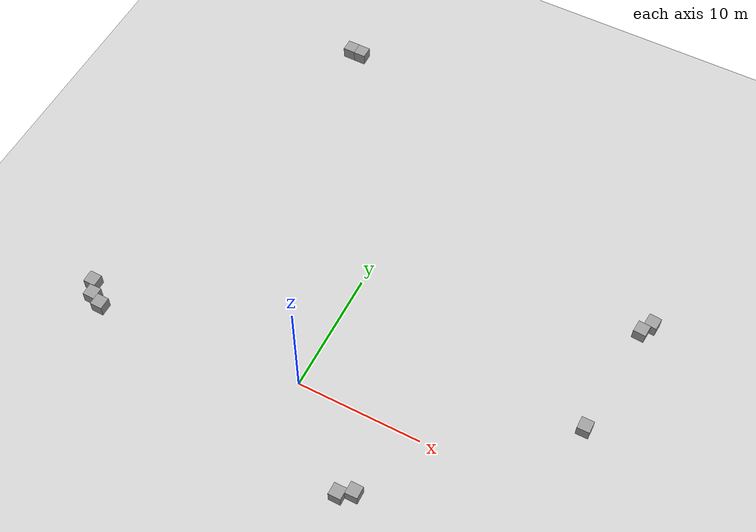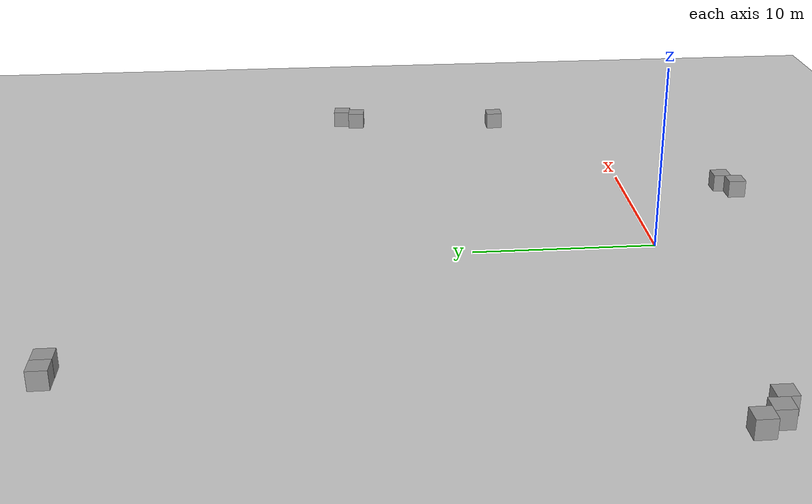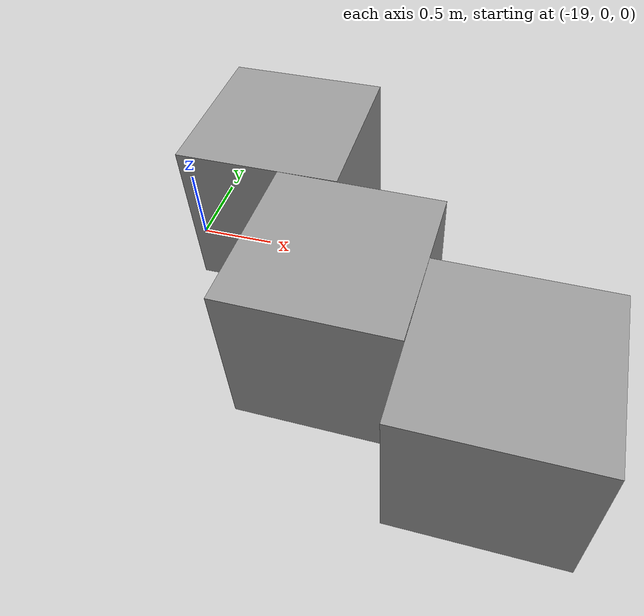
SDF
<sdf version="1.6">
 <world name="default">
  <model name="ground_plane">
   <static>1</static>
   <link name="link">
    <collision name="collision">
     <geometry><plane><normal>0 0 1</normal><size>100 100</size></plane></geometry>
     <surface><friction><ode><mu>100</mu><mu2>50</mu2></ode></friction></surface>
    </collision>
    <visual name="visual">
     <cast_shadows>0</cast_shadows>
     <geometry><plane><normal>0 0 1</normal><size>100 100</size></plane></geometry>
     <material>
      <script><uri>file://media/materials/scripts/gazebo.material</uri><name>Gazebo/Grey</name></script>
     </material>
    </visual>
   </link>
  </model>
  <light name="sun" type="directional">
   <pose>0 0 10 0 -0 0</pose>
   <diffuse>0.8 0.8 0.8 1</diffuse>
   <specular>0.2 0.2 0.2 1</specular>
   <attenuation>
    <range>1000</range>
    <constant>0.9</constant>
    <linear>0.01</linear>
    <quadratic>0.001</quadratic>
   </attenuation>
   <direction>-0.5 0.1 -0.9</direction>
  </light>
  <gravity>0 0 -9.8</gravity>
  <magnetic_field>6e-06 2.3e-05 -4.2e-05</magnetic_field>
  <atmosphere type="adiabatic"/>
  <physics name="default_physics" default="0" type="ode">
   <max_step_size>0.001</max_step_size>
   <real_time_factor>1</real_time_factor>
   <real_time_update_rate>1000</real_time_update_rate>
  </physics>
  <scene><ambient>0.4 0.4 0.4 1</ambient><background>0.7 0.7 0.7 1</background><shadows>1</shadows></scene>
  <spherical_coordinates>
   <surface_model>EARTH_WGS84</surface_model>
   <latitude_deg>0</latitude_deg>
   <longitude_deg>0</longitude_deg>
   <elevation>0</elevation>
   <heading_deg>0</heading_deg>
  </spherical_coordinates>
  <model name="unit_box_0">
   <pose>-16.7107 -1.33543 0.5 0 0 -0.009117</pose>
   <link name="link">
    <inertial>
     <mass>1</mass>
     <inertia>
      <ixx>0.166667</ixx>
      <ixy>0</ixy>
      <ixz>0</ixz>
      <iyy>0.166667</iyy>
      <iyz>0</iyz>
      <izz>0.166667</izz>
     </inertia>
    </inertial>
    <collision name="collision"><geometry><box><size>1 1 1</size></box></geometry></collision>
    <visual name="visual">
     <geometry><box><size>1 1 1</size></box></geometry>
     <material>
      <script><name>Gazebo/Grey</name><uri>file://media/materials/scripts/gazebo.material</uri></script>
     </material>
    </visual>
   </link>
  </model>
  <model name="unit_box_1">
   <pose>-17.7068 -0.874921 0.5 0 0 -0.013311</pose>
   <link name="link">
    <inertial>
     <mass>1</mass>
     <inertia>
      <ixx>0.166667</ixx>
      <ixy>0</ixy>
      <ixz>0</ixz>
      <iyy>0.166667</iyy>
      <iyz>0</iyz>
      <izz>0.166667</izz>
     </inertia>
    </inertial>
    <collision name="collision"><geometry><box><size>1 1 1</size></box></geometry></collision>
    <visual name="visual">
     <geometry><box><size>1 1 1</size></box></geometry>
     <material>
      <script><name>Gazebo/Grey</name><uri>file://media/materials/scripts/gazebo.material</uri></script>
     </material>
    </visual>
   </link>
  </model>
  <model name="unit_box_2">
   <pose>6.77878 -6.47213 0.5 0 -0 0.00025</pose>
   <link name="link">
    <inertial>
     <mass>1</mass>
     <inertia>
      <ixx>0.166667</ixx>
      <ixy>0</ixy>
      <ixz>0</ixz>
      <iyy>0.166667</iyy>
      <iyz>0</iyz>
      <izz>0.166667</izz>
     </inertia>
    </inertial>
    <collision name="collision"><geometry><box><size>1 1 1</size></box></geometry></collision>
    <visual name="visual">
     <geometry><box><size>1 1 1</size></box></geometry>
     <material>
      <script><name>Gazebo/Grey</name><uri>file://media/materials/scripts/gazebo.material</uri></script>
     </material>
    </visual>
   </link>
  </model>
  <model name="unit_box_3">
   <pose>7.77843 -5.85556 0.5 0 -0 0.001924</pose>
   <link name="link">
    <inertial>
     <mass>1</mass>
     <inertia>
      <ixx>0.166667</ixx>
      <ixy>0</ixy>
      <ixz>0</ixz>
      <iyy>0.166667</iyy>
      <iyz>0</iyz>
      <izz>0.166667</izz>
     </inertia>
    </inertial>
    <collision name="collision"><geometry><box><size>1 1 1</size></box></geometry></collision>
    <visual name="visual">
     <geometry><box><size>1 1 1</size></box></geometry>
     <material>
      <script><name>Gazebo/Grey</name><uri>file://media/materials/scripts/gazebo.material</uri></script>
     </material>
    </visual>
   </link>
  </model>
  <model name="unit_box_4">
   <pose>20.1902 6.32363 0.5 0 -0 0.007446</pose>
   <link name="link">
    <inertial>
     <mass>1</mass>
     <inertia>
      <ixx>0.166667</ixx>
      <ixy>0</ixy>
      <ixz>0</ixz>
      <iyy>0.166667</iyy>
      <iyz>0</iyz>
      <izz>0.166667</izz>
     </inertia>
    </inertial>
    <collision name="collision"><geometry><box><size>1 1 1</size></box></geometry></collision>
    <visual name="visual">
     <geometry><box><size>1 1 1</size></box></geometry>
     <material>
      <script><name>Gazebo/Grey</name><uri>file://media/materials/scripts/gazebo.material</uri></script>
     </material>
    </visual>
   </link>
  </model>
  <model name="unit_box_5">
   <pose>-11.8491 30.4442 0.499995 0 -1e-05 0.002045</pose>
   <link name="link">
    <inertial>
     <mass>1</mass>
     <inertia>
      <ixx>0.166667</ixx>
      <ixy>0</ixy>
      <ixz>0</ixz>
      <iyy>0.166667</iyy>
      <iyz>0</iyz>
      <izz>0.166667</izz>
     </inertia>
    </inertial>
    <collision name="collision"><geometry><box><size>1 1 1</size></box></geometry></collision>
    <visual name="visual">
     <geometry><box><size>1 1 1</size></box></geometry>
     <material>
      <script><name>Gazebo/Grey</name><uri>file://media/materials/scripts/gazebo.material</uri></script>
     </material>
    </visual>
   </link>
  </model>
  <model name="unit_box_6">
   <pose>-10.8491 30.437 0.499995 -0 -1e-05 0.00204</pose>
   <link name="link">
    <inertial>
     <mass>1</mass>
     <inertia>
      <ixx>0.166667</ixx>
      <ixy>0</ixy>
      <ixz>0</ixz>
      <iyy>0.166667</iyy>
      <iyz>0</iyz>
      <izz>0.166667</izz>
     </inertia>
    </inertial>
    <collision name="collision"><geometry><box><size>1 1 1</size></box></geometry></collision>
    <visual name="visual">
     <geometry><box><size>1 1 1</size></box></geometry>
     <material>
      <script><name>Gazebo/Grey</name><uri>file://media/materials/scripts/gazebo.material</uri></script>
     </material>
    </visual>
   </link>
  </model>
  <model name="unit_box_7">
   <pose>20.8863 15.6885 0.517787 8.4e-05 0.007652 -0.082536</pose>
   <link name="link">
    <inertial>
     <mass>1</mass>
     <inertia>
      <ixx>0.166667</ixx>
      <ixy>0</ixy>
      <ixz>0</ixz>
      <iyy>0.166667</iyy>
      <iyz>0</iyz>
      <izz>0.166667</izz>
     </inertia>
    </inertial>
    <collision name="collision"><geometry><box><size>1 1 1</size></box></geometry></collision>
    <visual name="visual">
     <geometry><box><size>1 1 1</size></box></geometry>
     <material>
      <script><name>Gazebo/Grey</name><uri>file://media/materials/scripts/gazebo.material</uri></script>
     </material>
    </visual>
   </link>
  </model>
  <model name="unit_box_8">
   <pose>21.3996 16.6494 0.501879 8.4e-05 -0.00364 -0.082537</pose>
   <link name="link">
    <inertial>
     <mass>1</mass>
     <inertia>
      <ixx>0.166667</ixx>
      <ixy>0</ixy>
      <ixz>0</ixz>
      <iyy>0.166667</iyy>
      <iyz>0</iyz>
      <izz>0.166667</izz>
     </inertia>
    </inertial>
    <collision name="collision"><geometry><box><size>1 1 1</size></box></geometry></collision>
    <visual name="visual">
     <geometry><box><size>1 1 1</size></box></geometry>
     <material>
      <script><name>Gazebo/Grey</name><uri>file://media/materials/scripts/gazebo.material</uri></script>
     </material>
    </visual>
   </link>
  </model>
  <model name="unit_box_9">
   <pose>-18.3388 0.131948 0.5 0 0 -0.000669</pose>
   <link name="link">
    <inertial>
     <mass>1</mass>
     <inertia>
      <ixx>0.166667</ixx>
      <ixy>0</ixy>
      <ixz>0</ixz>
      <iyy>0.166667</iyy>
      <iyz>0</iyz>
      <izz>0.166667</izz>
     </inertia>
    </inertial>
    <collision name="collision"><geometry><box><size>1 1 1</size></box></geometry></collision>
    <visual name="visual">
     <geometry><box><size>1 1 1</size></box></geometry>
     <material>
      <script><name>Gazebo/Grey</name><uri>file://media/materials/scripts/gazebo.material</uri></script>
     </material>
    </visual>
   </link>
  </model>
 </world>
</sdf>
